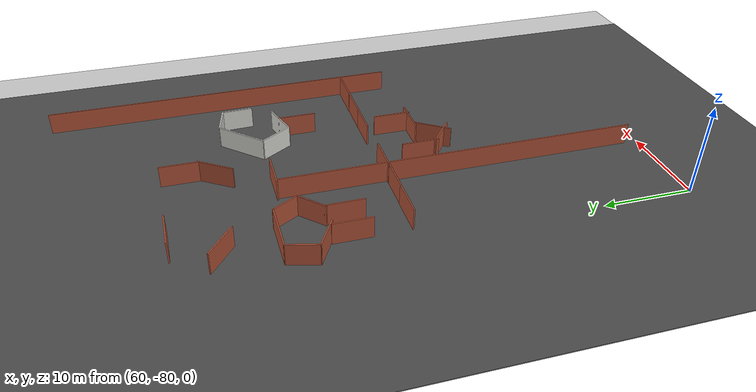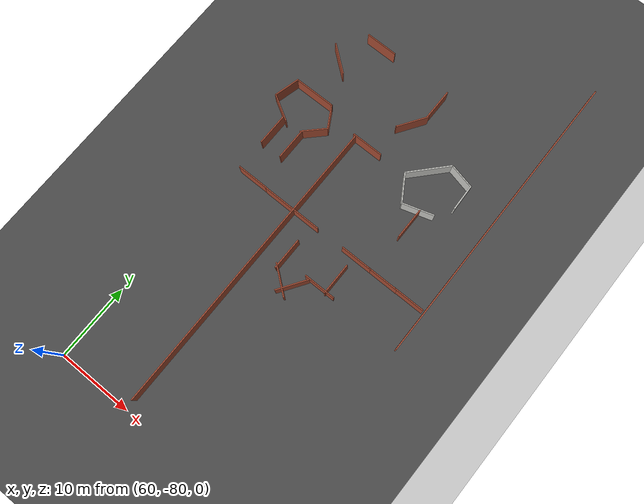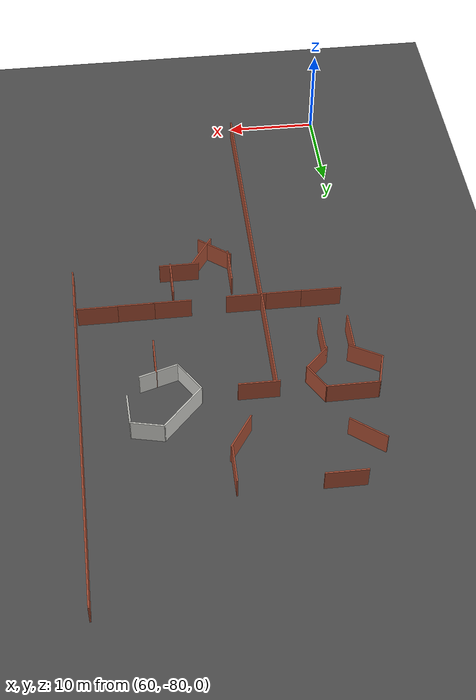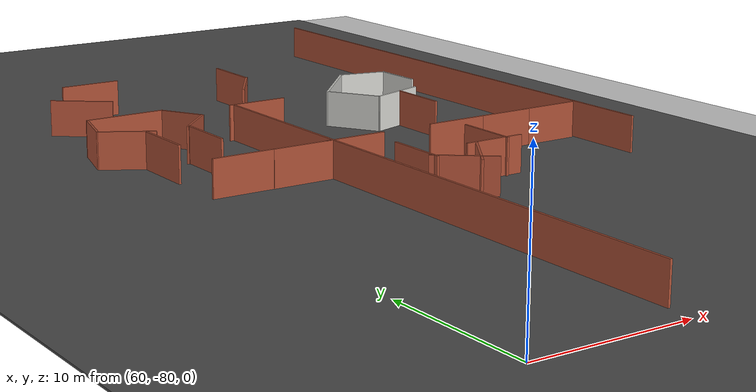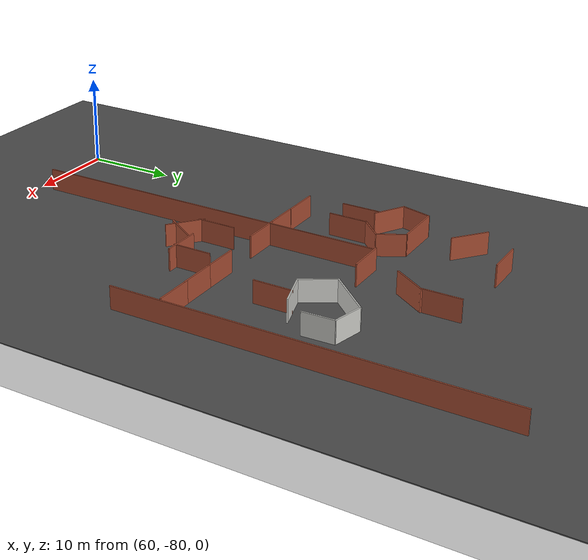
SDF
<sdf version="1.6">
 <world name="default">
  <model name="ground_plane">
   <static>1</static>
   <link name="link">
    <collision name="collision">
     <geometry><plane><normal>0 0 1</normal><size>200 200</size></plane></geometry>
     <surface><friction><ode><mu>100</mu><mu2>50</mu2></ode></friction></surface>
    </collision>
    <visual name="visual">
     <cast_shadows>0</cast_shadows>
     <geometry><plane><normal>0 0 1</normal><size>200 200</size></plane></geometry>
     <material>
      <script><uri>file://media/materials/scripts/gazebo.material</uri><name>Gazebo/Grey</name></script>
     </material>
    </visual>
   </link>
  </model>
  <model name="asphalt_plane">
   <static>1</static>
   <link name="link">
    <collision name="collision"><geometry><box><size>200 200 0.1</size></box></geometry></collision>
    <visual name="visual">
     <cast_shadows>0</cast_shadows>
     <geometry><box><size>200 200 0.1</size></box></geometry>
     <material>
      <script>
       <uri>model://asphalt_plane/materials/scripts</uri>
       <uri>model://asphalt_plane/materials/textures</uri>
       <name>vrc/asphalt</name>
      </script>
     </material>
    </visual>
   </link>
  </model>
  <model name="brick_longwall_0_clone">
   <pose>70.0948 -58.1794 0 0 0 -1.57092</pose>
   <link name="Wall_0">
    <collision name="Wall_0_Collision">
     <geometry><box><size>40.5 0.15 2.5</size></box></geometry>
     <pose>0 0 1.25 0 -0 0</pose>
    </collision>
    <visual name="Wall_0_Visual">
     <pose>0 0 1.25 0 -0 0</pose>
     <geometry><box><size>40.5 0.15 2.5</size></box></geometry>
     <material>
      <script><uri>file://media/materials/scripts/gazebo.material</uri><name>Gazebo/Bricks</name></script>
      <ambient>1 1 1 1</ambient>
     </material>
    </visual>
    <pose>1e-06 0 0 0 -0 0</pose>
   </link>
   <static>1</static>
  </model>
  <model name="brick_room1">
   <pose>62.9469 -39.1804 0 0 -0 0</pose>
   <link name="Wall_11">
    <collision name="Wall_11_Collision">
     <geometry><box><size>3.25 0.15 2.5</size></box></geometry>
     <pose>0 0 1.25 0 -0 0</pose>
    </collision>
    <visual name="Wall_11_Visual">
     <pose>0 0 1.25 0 -0 0</pose>
     <geometry><box><size>3.25 0.15 2.5</size></box></geometry>
     <material>
      <script><uri>file://media/materials/scripts/gazebo.material</uri><name>Gazebo/Bricks</name></script>
      <ambient>1 1 1 1</ambient>
     </material>
    </visual>
    <pose>3.12132 1.19483 0 0 0 -1.0472</pose>
   </link>
   <link name="Wall_12">
    <collision name="Wall_12_Collision">
     <geometry><box><size>3.5 0.15 2.5</size></box></geometry>
     <pose>0 0 1.25 0 -0 0</pose>
    </collision>
    <visual name="Wall_12_Visual">
     <pose>0 0 1.25 0 -0 0</pose>
     <geometry><box><size>3.5 0.15 2.5</size></box></geometry>
     <material>
      <script><uri>file://media/materials/scripts/gazebo.material</uri><name>Gazebo/Bricks</name></script>
      <ambient>1 1 1 1</ambient>
     </material>
    </visual>
    <pose>2.71192 -1.33192 0 0 0 -2.35619</pose>
   </link>
   <link name="Wall_7">
    <collision name="Wall_7_Collision">
     <geometry><box><size>5.52935 0.15 2.5</size></box></geometry>
     <pose>0 0 1.25 0 -0 0</pose>
    </collision>
    <visual name="Wall_7_Visual">
     <pose>0 0 1.25 0 -0 0</pose>
     <geometry><box><size>5.52935 0.15 2.5</size></box></geometry>
     <material>
      <script><uri>file://media/materials/scripts/gazebo.material</uri><name>Gazebo/Bricks</name></script>
      <ambient>1 1 1 1</ambient>
     </material>
    </visual>
    <pose>-0.343285 2.51793 0 0 0 -3.13444</pose>
   </link>
   <link name="Wall_8">
    <collision name="Wall_8_Collision">
     <geometry><box><size>3.5 0.15 2.5</size></box></geometry>
     <pose>0 0 1.25 0 -0 0</pose>
    </collision>
    <visual name="Wall_8_Visual">
     <pose>0 0 1.25 0 -0 0</pose>
     <geometry><box><size>3.5 0.15 2.5</size></box></geometry>
     <material>
      <script><uri>file://media/materials/scripts/gazebo.material</uri><name>Gazebo/Bricks</name></script>
      <ambient>1 1 1 1</ambient>
     </material>
    </visual>
    <pose>-3.46641 0.880761 0 0 0 -1.8326</pose>
   </link>
   <link name="Wall_9">
    <collision name="Wall_9_Collision">
     <geometry><box><size>3.75 0.15 2.5</size></box></geometry>
     <pose>0 0 1.25 0 -0 0</pose>
    </collision>
    <visual name="Wall_9_Visual">
     <pose>0 0 1.25 0 -0 0</pose>
     <geometry><box><size>3.75 0.15 2.5</size></box></geometry>
     <material>
      <script><uri>file://media/materials/scripts/gazebo.material</uri><name>Gazebo/Bricks</name></script>
      <ambient>1 1 1 1</ambient>
     </material>
    </visual>
    <pose>-2.34109 -1.63716 0 0 0 -0.523599</pose>
   </link>
   <static>1</static>
  </model>
  <model name="brick_worlds_1_clone">
   <pose>61.6345 -43.6539 0 0 -0 0</pose>
   <link name="Wall_0">
    <collision name="Wall_0_Collision">
     <geometry><box><size>4.25 0.15 2.5</size></box></geometry>
     <pose>0 0 1.25 0 -0 0</pose>
    </collision>
    <visual name="Wall_0_Visual">
     <pose>0 0 1.25 0 -0 0</pose>
     <geometry><box><size>4.25 0.15 2.5</size></box></geometry>
     <material>
      <script><uri>file://media/materials/scripts/gazebo.material</uri><name>Gazebo/Bricks</name></script>
      <ambient>1 1 1 1</ambient>
     </material>
    </visual>
    <pose>0 -0 0 0 -0 1.5708</pose>
   </link>
   <static>1</static>
  </model>
  <model name="brick_worlds_1_clone_0_clone">
   <pose>63.736 -49.7946 0 0 0 -1.57092</pose>
   <link name="Wall_0">
    <collision name="Wall_0_Collision">
     <geometry><box><size>4.25 0.15 2.5</size></box></geometry>
     <pose>0 0 1.25 0 -0 0</pose>
    </collision>
    <visual name="Wall_0_Visual">
     <pose>0 0 1.25 0 -0 0</pose>
     <geometry><box><size>4.25 0.15 2.5</size></box></geometry>
     <material>
      <script><uri>file://media/materials/scripts/gazebo.material</uri><name>Gazebo/Bricks</name></script>
      <ambient>1 1 1 1</ambient>
     </material>
    </visual>
    <pose>0 -0 0 0 -0 1.5708</pose>
   </link>
   <static>1</static>
  </model>
  <model name="brick_worlds_1_clone_0_clone_clone">
   <pose>67.9203 -49.8236 0 0 0 -1.57092</pose>
   <link name="Wall_0">
    <collision name="Wall_0_Collision">
     <geometry><box><size>4.25 0.15 2.5</size></box></geometry>
     <pose>0 0 1.25 0 -0 0</pose>
    </collision>
    <visual name="Wall_0_Visual">
     <pose>0 0 1.25 0 -0 0</pose>
     <geometry><box><size>4.25 0.15 2.5</size></box></geometry>
     <material>
      <script><uri>file://media/materials/scripts/gazebo.material</uri><name>Gazebo/Bricks</name></script>
      <ambient>1 1 1 1</ambient>
     </material>
    </visual>
    <pose>0 -0 0 0 -0 1.5708</pose>
   </link>
   <static>1</static>
  </model>
  <model name="brick_worlds_1_clone_0_clone_clone_0">
   <pose>71.8838 -37.8494 0 0 0 -1.57092</pose>
   <link name="Wall_0">
    <collision name="Wall_0_Collision">
     <geometry><box><size>4.25 0.15 2.5</size></box></geometry>
     <pose>0 0 1.25 0 -0 0</pose>
    </collision>
    <visual name="Wall_0_Visual">
     <pose>0 0 1.25 0 -0 0</pose>
     <geometry><box><size>4.25 0.15 2.5</size></box></geometry>
     <material>
      <script><uri>file://media/materials/scripts/gazebo.material</uri><name>Gazebo/Bricks</name></script>
      <ambient>1 1 1 1</ambient>
     </material>
    </visual>
    <pose>0 -0 0 0 -0 1.5708</pose>
   </link>
   <static>1</static>
  </model>
  <model name="brick_worlds_1_clone_clone">
   <pose>64.6066 -43.6549 0 0 -0 0</pose>
   <link name="Wall_0">
    <collision name="Wall_0_Collision">
     <geometry><box><size>4.25 0.15 2.5</size></box></geometry>
     <pose>0 0 1.25 0 -0 0</pose>
    </collision>
    <visual name="Wall_0_Visual">
     <pose>0 0 1.25 0 -0 0</pose>
     <geometry><box><size>4.25 0.15 2.5</size></box></geometry>
     <material>
      <script><uri>file://media/materials/scripts/gazebo.material</uri><name>Gazebo/Bricks</name></script>
      <ambient>1 1 1 1</ambient>
     </material>
    </visual>
    <pose>0 -0 0 0 -0 1.5708</pose>
   </link>
   <static>1</static>
  </model>
  <model name="brick_longwall_clone_clone_3_clone_2">
   <pose>89.7563 -34.9133 0 0 0 -1.56602</pose>
   <link name="Wall_0">
    <collision name="Wall_0_Collision">
     <geometry><box><size>40.5 0.15 2.5</size></box></geometry>
     <pose>0 0 1.25 0 -0 0</pose>
    </collision>
    <visual name="Wall_0_Visual">
     <pose>0 0 1.25 0 -0 0</pose>
     <geometry><box><size>40.5 0.15 2.5</size></box></geometry>
     <material>
      <script><uri>file://media/materials/scripts/gazebo.material</uri><name>Gazebo/Bricks</name></script>
      <ambient>1 1 1 1</ambient>
     </material>
    </visual>
    <pose>1e-06 0 0 0 -0 0</pose>
   </link>
   <static>1</static>
  </model>
  <model name="brick_worlds_1_clone_0_clone_clone_0_clone_clone_clone">
   <pose>71.7506 -49.7978 0 0 0 -1.57092</pose>
   <link name="Wall_0">
    <collision name="Wall_0_Collision">
     <geometry><box><size>4.25 0.15 2.5</size></box></geometry>
     <pose>0 0 1.25 0 -0 0</pose>
    </collision>
    <visual name="Wall_0_Visual">
     <pose>0 0 1.25 0 -0 0</pose>
     <geometry><box><size>4.25 0.15 2.5</size></box></geometry>
     <material>
      <script><uri>file://media/materials/scripts/gazebo.material</uri><name>Gazebo/Bricks</name></script>
      <ambient>1 1 1 1</ambient>
     </material>
    </visual>
    <pose>0 -0 0 0 -0 1.5708</pose>
   </link>
   <static>1</static>
  </model>
  <model name="brick_worlds_1_clone_0_clone_clone_0_clone_clone_clone_1">
   <pose>79.6674 -49.7138 0 0 0 -1.57092</pose>
   <link name="Wall_0">
    <collision name="Wall_0_Collision">
     <geometry><box><size>4.25 0.15 2.5</size></box></geometry>
     <pose>0 0 1.25 0 -0 0</pose>
    </collision>
    <visual name="Wall_0_Visual">
     <pose>0 0 1.25 0 -0 0</pose>
     <geometry><box><size>4.25 0.15 2.5</size></box></geometry>
     <material>
      <script><uri>file://media/materials/scripts/gazebo.material</uri><name>Gazebo/Bricks</name></script>
      <ambient>1 1 1 1</ambient>
     </material>
    </visual>
    <pose>0 -0 0 0 -0 1.5708</pose>
   </link>
   <static>1</static>
  </model>
  <model name="brick_worlds_1_clone_0_clone_clone_0_clone_clone_clone_2">
   <pose>83.5636 -49.7075 0 0 0 -1.57092</pose>
   <link name="Wall_0">
    <collision name="Wall_0_Collision">
     <geometry><box><size>4.25 0.15 2.5</size></box></geometry>
     <pose>0 0 1.25 0 -0 0</pose>
    </collision>
    <visual name="Wall_0_Visual">
     <pose>0 0 1.25 0 -0 0</pose>
     <geometry><box><size>4.25 0.15 2.5</size></box></geometry>
     <material>
      <script><uri>file://media/materials/scripts/gazebo.material</uri><name>Gazebo/Bricks</name></script>
      <ambient>1 1 1 1</ambient>
     </material>
    </visual>
    <pose>0 -0 0 0 -0 1.5708</pose>
   </link>
   <static>1</static>
  </model>
  <model name="brick_worlds_1_clone_0_clone_clone_0_clone_clone_clone_3">
   <pose>87.4411 -49.6799 0 0 0 -1.57092</pose>
   <link name="Wall_0">
    <collision name="Wall_0_Collision">
     <geometry><box><size>4.25 0.15 2.5</size></box></geometry>
     <pose>0 0 1.25 0 -0 0</pose>
    </collision>
    <visual name="Wall_0_Visual">
     <pose>0 0 1.25 0 -0 0</pose>
     <geometry><box><size>4.25 0.15 2.5</size></box></geometry>
     <material>
      <script><uri>file://media/materials/scripts/gazebo.material</uri><name>Gazebo/Bricks</name></script>
      <ambient>1 1 1 1</ambient>
     </material>
    </visual>
    <pose>0 -0 0 0 -0 1.5708</pose>
   </link>
   <static>1</static>
  </model>
  <model name="brick_worlds_1_clone_clone_clone">
   <pose>81.9554 -42.414 0 0 -0 0</pose>
   <link name="Wall_0">
    <collision name="Wall_0_Collision">
     <geometry><box><size>4.25 0.15 2.5</size></box></geometry>
     <pose>0 0 1.25 0 -0 0</pose>
    </collision>
    <visual name="Wall_0_Visual">
     <pose>0 0 1.25 0 -0 0</pose>
     <geometry><box><size>4.25 0.15 2.5</size></box></geometry>
     <material>
      <script><uri>file://media/materials/scripts/gazebo.material</uri><name>Gazebo/Bricks</name></script>
      <ambient>1 1 1 1</ambient>
     </material>
    </visual>
    <pose>0 -0 0 0 -0 1.5708</pose>
   </link>
   <static>1</static>
  </model>
  <model name="brick_worlds_1_clone_clone_1">
   <pose>75.4189 -28.4288 0 0 -0 0</pose>
   <link name="Wall_0">
    <collision name="Wall_0_Collision">
     <geometry><box><size>4.25 0.15 2.5</size></box></geometry>
     <pose>0 0 1.25 0 -0 0</pose>
    </collision>
    <visual name="Wall_0_Visual">
     <pose>0 0 1.25 0 -0 0</pose>
     <geometry><box><size>4.25 0.15 2.5</size></box></geometry>
     <material>
      <script><uri>file://media/materials/scripts/gazebo.material</uri><name>Gazebo/Bricks</name></script>
      <ambient>1 1 1 1</ambient>
     </material>
    </visual>
    <pose>0 -0 0 0 -0 1.5708</pose>
   </link>
   <static>1</static>
  </model>
  <model name="brick_worlds_1_clone_0_clone_clone_0_clone_2">
   <pose>65.0632 -26.3352 0 0 0 -1.57092</pose>
   <link name="Wall_0">
    <collision name="Wall_0_Collision">
     <geometry><box><size>4.25 0.15 2.5</size></box></geometry>
     <pose>0 0 1.25 0 -0 0</pose>
    </collision>
    <visual name="Wall_0_Visual">
     <pose>0 0 1.25 0 -0 0</pose>
     <geometry><box><size>4.25 0.15 2.5</size></box></geometry>
     <material>
      <script><uri>file://media/materials/scripts/gazebo.material</uri><name>Gazebo/Bricks</name></script>
      <ambient>1 1 1 1</ambient>
     </material>
    </visual>
    <pose>0 -0 0 0 -0 1.5708</pose>
   </link>
   <static>1</static>
  </model>
  <model name="brick_worlds_1_clone_1_clone_7_clone_clone_clone_clone">
   <pose>74.3761 -32.0884 0 0 0 -0.589382</pose>
   <link name="Wall_0">
    <collision name="Wall_0_Collision">
     <geometry><box><size>4.25 0.15 2.5</size></box></geometry>
     <pose>0 0 1.25 0 -0 0</pose>
    </collision>
    <visual name="Wall_0_Visual">
     <pose>0 0 1.25 0 -0 0</pose>
     <geometry><box><size>4.25 0.15 2.5</size></box></geometry>
     <material>
      <script><uri>file://media/materials/scripts/gazebo.material</uri><name>Gazebo/Bricks</name></script>
      <ambient>1 1 1 1</ambient>
     </material>
    </visual>
    <pose>0 -0 0 0 -0 1.5708</pose>
   </link>
   <static>1</static>
  </model>
  <model name="brick_worlds_1_clone_1_clone_7_clone_clone_0_clone">
   <pose>62.1187 -31.1658 0 0 -0 0.90029</pose>
   <link name="Wall_0">
    <collision name="Wall_0_Collision">
     <geometry><box><size>4.25 0.15 2.5</size></box></geometry>
     <pose>0 0 1.25 0 -0 0</pose>
    </collision>
    <visual name="Wall_0_Visual">
     <pose>0 0 1.25 0 -0 0</pose>
     <geometry><box><size>4.25 0.15 2.5</size></box></geometry>
     <material>
      <script><uri>file://media/materials/scripts/gazebo.material</uri><name>Gazebo/Bricks</name></script>
      <ambient>1 1 1 1</ambient>
     </material>
    </visual>
    <pose>0 -0 0 0 -0 1.5708</pose>
   </link>
   <static>1</static>
  </model>
  <model name="brick_worlds_1_clone_1_clone_7_clone_clone_clone_clone_0_clone_0">
   <pose>75.7817 -56.9213 0 0 0 -0.589382</pose>
   <link name="Wall_0">
    <collision name="Wall_0_Collision">
     <geometry><box><size>4.25 0.15 2.5</size></box></geometry>
     <pose>0 0 1.25 0 -0 0</pose>
    </collision>
    <visual name="Wall_0_Visual">
     <pose>0 0 1.25 0 -0 0</pose>
     <geometry><box><size>4.25 0.15 2.5</size></box></geometry>
     <material>
      <script><uri>file://media/materials/scripts/gazebo.material</uri><name>Gazebo/Bricks</name></script>
      <ambient>1 1 1 1</ambient>
     </material>
    </visual>
    <pose>0 -0 0 0 -0 1.5708</pose>
   </link>
   <static>1</static>
  </model>
  <model name="brick_worlds_1_clone_1_clone_7_clone_clone_0_clone_0_clone_clone_clone">
   <pose>74.3284 -57.3587 0 0 -0 0.90029</pose>
   <link name="Wall_0">
    <collision name="Wall_0_Collision">
     <geometry><box><size>4.25 0.15 2.5</size></box></geometry>
     <pose>0 0 1.25 0 -0 0</pose>
    </collision>
    <visual name="Wall_0_Visual">
     <pose>0 0 1.25 0 -0 0</pose>
     <geometry><box><size>4.25 0.15 2.5</size></box></geometry>
     <material>
      <script><uri>file://media/materials/scripts/gazebo.material</uri><name>Gazebo/Bricks</name></script>
      <ambient>1 1 1 1</ambient>
     </material>
    </visual>
    <pose>0 -0 0 0 -0 1.5708</pose>
   </link>
   <static>1</static>
  </model>
  <model name="brick_worlds_1_clone_0_clone_clone_clone_clone_3_clone">
   <pose>78.4155 -55.0538 0 0 0 -1.57092</pose>
   <link name="Wall_0">
    <collision name="Wall_0_Collision">
     <geometry><box><size>4.25 0.15 2.5</size></box></geometry>
     <pose>0 0 1.25 0 -0 0</pose>
    </collision>
    <visual name="Wall_0_Visual">
     <pose>0 0 1.25 0 -0 0</pose>
     <geometry><box><size>4.25 0.15 2.5</size></box></geometry>
     <material>
      <script><uri>file://media/materials/scripts/gazebo.material</uri><name>Gazebo/Bricks</name></script>
      <ambient>1 1 1 1</ambient>
     </material>
    </visual>
    <pose>0 -0 0 0 -0 1.5708</pose>
   </link>
   <static>1</static>
  </model>
  <model name="brick_worlds_1_clone_clone_clone_clone_5_clone_0">
   <pose>79.3488 -53.1598 0 0 -0 0</pose>
   <link name="Wall_0">
    <collision name="Wall_0_Collision">
     <geometry><box><size>4.25 0.15 2.5</size></box></geometry>
     <pose>0 0 1.25 0 -0 0</pose>
    </collision>
    <visual name="Wall_0_Visual">
     <pose>0 0 1.25 0 -0 0</pose>
     <geometry><box><size>4.25 0.15 2.5</size></box></geometry>
     <material>
      <script><uri>file://media/materials/scripts/gazebo.material</uri><name>Gazebo/Bricks</name></script>
      <ambient>1 1 1 1</ambient>
     </material>
    </visual>
    <pose>0 -0 0 0 -0 1.5708</pose>
   </link>
   <static>1</static>
  </model>
  <model name="brick_worlds_1_clone_clone_clone_clone_5_clone_1">
   <pose>72.9562 -54.4612 0 0 -0 0</pose>
   <link name="Wall_0">
    <collision name="Wall_0_Collision">
     <geometry><box><size>4.25 0.15 2.5</size></box></geometry>
     <pose>0 0 1.25 0 -0 0</pose>
    </collision>
    <visual name="Wall_0_Visual">
     <pose>0 0 1.25 0 -0 0</pose>
     <geometry><box><size>4.25 0.15 2.5</size></box></geometry>
     <material>
      <script><uri>file://media/materials/scripts/gazebo.material</uri><name>Gazebo/Bricks</name></script>
      <ambient>1 1 1 1</ambient>
     </material>
    </visual>
    <pose>0 -0 0 0 -0 1.5708</pose>
   </link>
   <static>1</static>
  </model>
  <model name="concrete_room_3">
   <pose>82.0065 -37.3561 0 0 -0 0.823875</pose>
   <link name="Wall_54">
    <collision name="Wall_54_Collision">
     <geometry><box><size>4.25 0.15 2.5</size></box></geometry>
     <pose>0 0 1.25 0 -0 0</pose>
    </collision>
    <visual name="Wall_54_Visual">
     <pose>0 0 1.25 0 -0 0</pose>
     <geometry><box><size>4.25 0.15 2.5</size></box></geometry>
     <material>
      <script><uri>file://media/materials/scripts/gazebo.material</uri><name>Gazebo/CeilingTiled</name></script>
      <ambient>1 1 1 1</ambient>
     </material>
     <meta><layer>0</layer></meta>
    </visual>
    <pose>-2.48718 -1.85941 0 0 -0 2.61799</pose>
   </link>
   <link name="Wall_55">
    <collision name="Wall_55_Collision">
     <geometry><box><size>4 0.15 2.5</size></box></geometry>
     <pose>0 0 1.25 0 -0 0</pose>
    </collision>
    <visual name="Wall_55_Visual">
     <pose>0 0 1.25 0 -0 0</pose>
     <geometry><box><size>4 0.15 2.5</size></box></geometry>
     <material>
      <script><uri>file://media/materials/scripts/gazebo.material</uri><name>Gazebo/CeilingTiled</name></script>
      <ambient>1 1 1 1</ambient>
     </material>
     <meta><layer>0</layer></meta>
    </visual>
    <pose>-3.76431 1.025 0 0 -0 1.309</pose>
   </link>
   <link name="Wall_56">
    <collision name="Wall_56_Collision">
     <geometry><box><size>6 0.15 2.5</size></box></geometry>
     <pose>0 0 1.25 0 -0 0</pose>
    </collision>
    <visual name="Wall_56_Visual">
     <pose>0 0 1.25 0 -0 0</pose>
     <geometry><box><size>6 0.15 2.5</size></box></geometry>
     <material>
      <script><uri>file://media/materials/scripts/gazebo.material</uri><name>Gazebo/CeilingTiled</name></script>
      <ambient>1 1 1 1</ambient>
     </material>
     <meta><layer>0</layer></meta>
    </visual>
    <pose>-0.34108 2.88441 0 0 -0 0</pose>
   </link>
   <link name="Wall_57">
    <collision name="Wall_57_Collision">
     <geometry><box><size>3.5 0.15 2.5</size></box></geometry>
     <pose>0 0 1.25 0 -0 0</pose>
    </collision>
    <visual name="Wall_57_Visual">
     <pose>0 0 1.25 0 -0 0</pose>
     <geometry><box><size>3.5 0.15 2.5</size></box></geometry>
     <material>
      <script><uri>file://media/materials/scripts/gazebo.material</uri><name>Gazebo/CeilingTiled</name></script>
      <ambient>1 1 1 1</ambient>
     </material>
     <meta><layer>0</layer></meta>
    </visual>
    <pose>3.42142 1.43382 0 0 0 -1.0472</pose>
   </link>
   <link name="Wall_58">
    <collision name="Wall_58_Collision">
     <geometry><box><size>3.5 0.15 2.5</size></box></geometry>
     <pose>0 0 1.25 0 -0 0</pose>
    </collision>
    <visual name="Wall_58_Visual">
     <pose>0 0 1.25 0 -0 0</pose>
     <geometry><box><size>3.5 0.15 2.5</size></box></geometry>
     <material>
      <script><uri>file://media/materials/scripts/gazebo.material</uri><name>Gazebo/CeilingTiled</name></script>
      <ambient>1 1 1 1</ambient>
     </material>
     <meta><layer>0</layer></meta>
    </visual>
    <pose>3.07452 -1.20118 0 0 0 -2.35619</pose>
   </link>
   <static>1</static>
  </model>
 </world>
</sdf>
